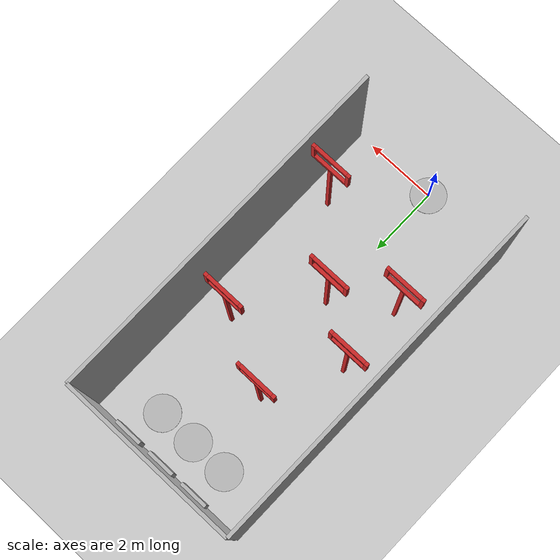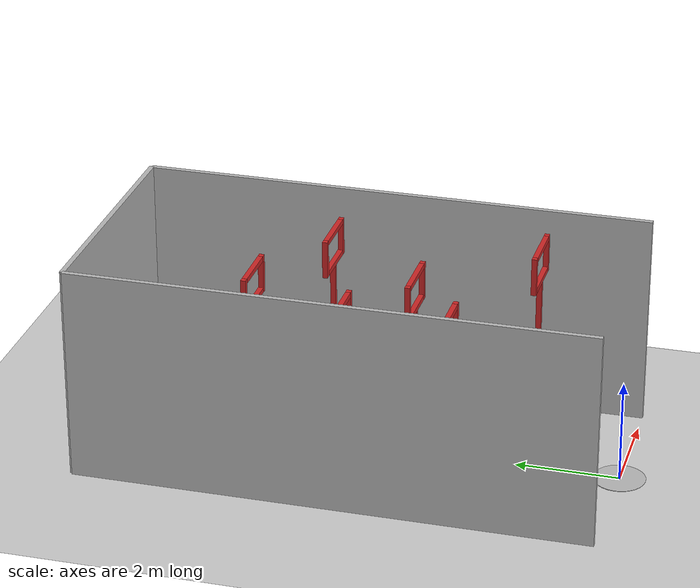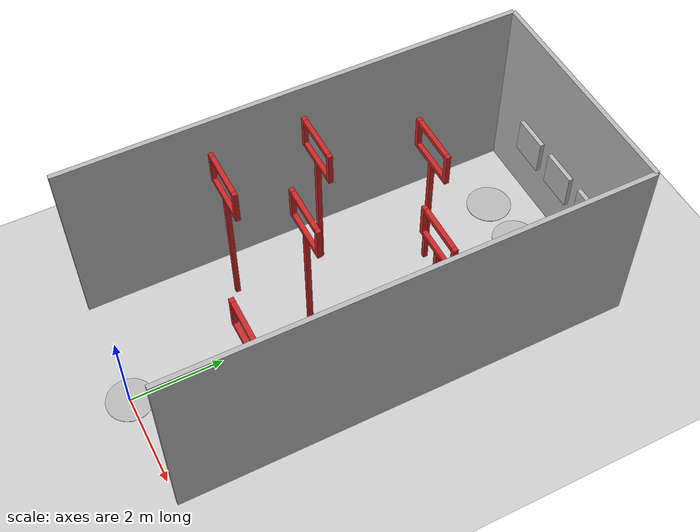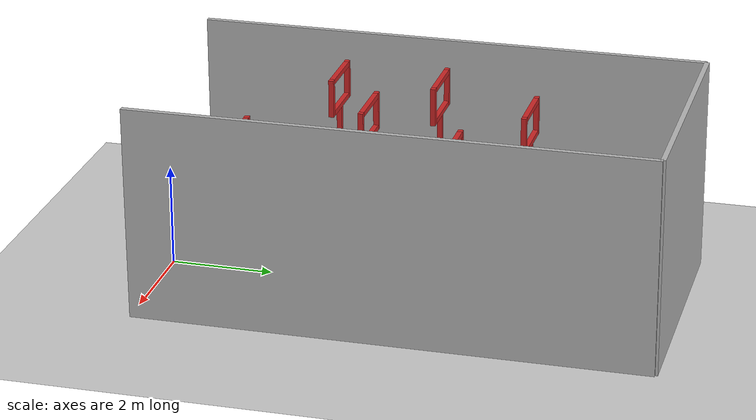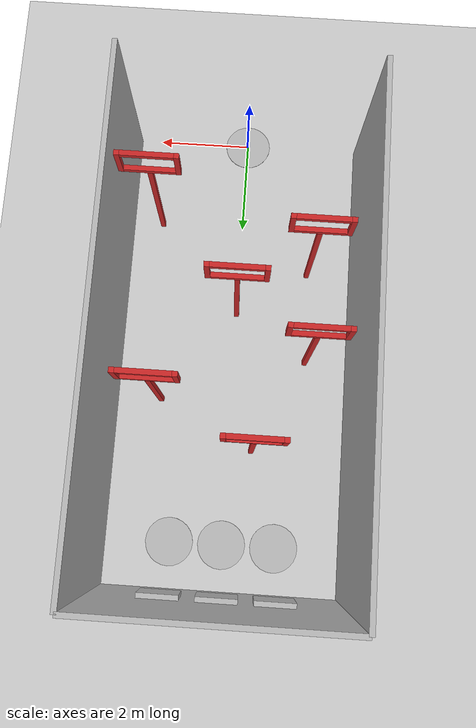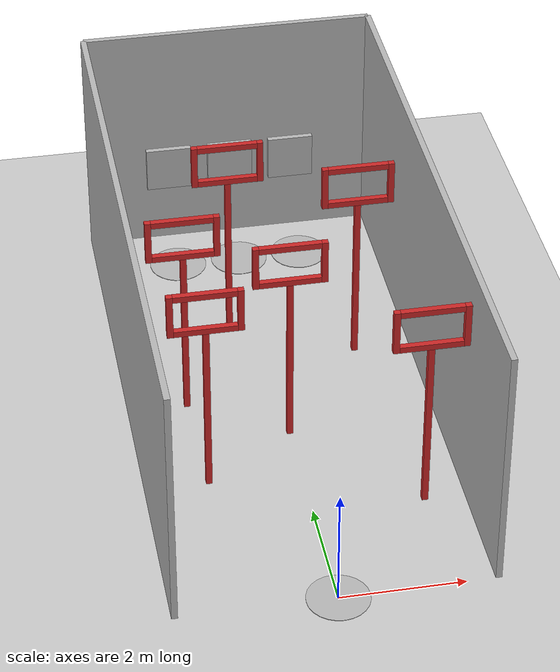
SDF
<sdf version="1.6">
 <world name="default">
  <light name="sun" type="directional">
   <pose>0 0 10 0 -0 0</pose>
   <diffuse>0.8 0.8 0.8 1</diffuse>
   <specular>0.2 0.2 0.2 1</specular>
   <attenuation>
    <range>1000</range>
    <constant>0.9</constant>
    <linear>0.01</linear>
    <quadratic>0.001</quadratic>
   </attenuation>
   <direction>-0.5 0.1 -0.9</direction>
  </light>
  <model name="ground_plane">
   <static>1</static>
   <link name="link">
    <collision name="collision">
     <geometry><plane><normal>0 0 1</normal><size>100 100</size></plane></geometry>
     <surface>
      <contact><collide_bitmask>65535</collide_bitmask></contact>
      <friction><ode><mu>100</mu><mu2>50</mu2></ode></friction>
     </surface>
    </collision>
    <visual name="visual">
     <cast_shadows>0</cast_shadows>
     <geometry><plane><normal>0 0 1</normal><size>100 100</size></plane></geometry>
     <material>
      <script><uri>file://media/materials/scripts/gazebo.material</uri><name>Gazebo/Grey</name></script>
     </material>
    </visual>
   </link>
  </model>
  <gravity>0 0 -9.8</gravity>
  <magnetic_field>6e-06 2.3e-05 -4.2e-05</magnetic_field>
  <atmosphere type="adiabatic"/>
  <physics name="default_physics" default="0" type="ode">
   <max_step_size>0.001</max_step_size>
   <real_time_factor>1</real_time_factor>
   <real_time_update_rate>1000</real_time_update_rate>
  </physics>
  <scene><ambient>0.4 0.4 0.4 1</ambient><background>0.7 0.7 0.7 1</background><shadows>1</shadows></scene>
  <audio><device>default</device></audio>
  <spherical_coordinates>
   <surface_model>EARTH_WGS84</surface_model>
   <latitude_deg>0</latitude_deg>
   <longitude_deg>0</longitude_deg>
   <elevation>0</elevation>
   <heading_deg>0</heading_deg>
  </spherical_coordinates>
  <model name="frame4">
   <link name="base_link">
    <inertial>
     <mass>50</mass>
     <inertia><ixx>2.5</ixx><ixy>0</ixy><ixz>0</ixz><iyy>2.5</iyy><iyz>0</iyz><izz>2.5</izz></inertia>
    </inertial>
    <collision name="base_link_collision">
     <pose>0 0 0.05 0 -0 0</pose>
     <geometry><box><size>0.1 0.1 2.9</size></box></geometry>
    </collision>
    <collision name="base_link_fixed_joint_lump__horizontal_down_collision_1">
     <geometry><box><size>1 0.1 0.1</size></box></geometry>
    </collision>
    <collision name="base_link_fixed_joint_lump__horizontal_up_collision_2">
     <geometry><box><size>1 0.1 0.1</size></box></geometry>
    </collision>
    <collision name="base_link_fixed_joint_lump__vertical_left_collision_3">
     <geometry><box><size>0.1 0.1 0.75</size></box></geometry>
    </collision>
    <collision name="base_link_fixed_joint_lump__vertical_right_collision_4">
     <geometry><box><size>0.1 0.1 0.75</size></box></geometry>
    </collision>
    <visual name="base_link_visual">
     <geometry><box><size>0.1 0.1 3</size></box></geometry>
     <material>
      <script><name>Gazebo/Red</name><uri>file://media/materials/scripts/gazebo.material</uri></script>
     </material>
    </visual>
    <visual name="base_link_fixed_joint_lump__horizontal_down_visual_1">
     <pose>0 0 1.55 0 -0 0</pose>
     <geometry><box><size>1 0.1 0.1</size></box></geometry>
     <material>
      <script><name>Gazebo/Red</name><uri>file://media/materials/scripts/gazebo.material</uri></script>
     </material>
    </visual>
    <visual name="base_link_fixed_joint_lump__horizontal_up_visual_2">
     <pose>0 0 2.2 0 -0 0</pose>
     <geometry><box><size>1 0.1 0.1</size></box></geometry>
     <material>
      <script><name>Gazebo/Red</name><uri>file://media/materials/scripts/gazebo.material</uri></script>
     </material>
    </visual>
    <visual name="base_link_fixed_joint_lump__vertical_left_visual_3">
     <pose>-0.55 0 1.875 0 -0 0</pose>
     <geometry><box><size>0.1 0.1 0.75</size></box></geometry>
     <material>
      <script><name>Gazebo/Red</name><uri>file://media/materials/scripts/gazebo.material</uri></script>
     </material>
    </visual>
    <visual name="base_link_fixed_joint_lump__vertical_right_visual_4">
     <pose>0.55 0 1.875 0 -0 0</pose>
     <geometry><box><size>0.1 0.1 0.75</size></box></geometry>
     <material>
      <script><name>Gazebo/Red</name><uri>file://media/materials/scripts/gazebo.material</uri></script>
     </material>
    </visual>
   </link>
   <joint name="world_joint" type="fixed"><child>base_link</child><parent>world</parent></joint>
   <pose>-1.55 5 1.5 0 -0 0</pose>
  </model>
  <model name="sidewall2">
   <link name="base_link">
    <inertial>
     <mass>10</mass>
     <inertia><ixx>0.5</ixx><ixy>0</ixy><ixz>0</ixz><iyy>0.5</iyy><iyz>0</iyz><izz>0.5</izz></inertia>
    </inertial>
    <collision name="base_link_collision">
     <pose>0 0 0.05 0 -0 0</pose>
     <geometry><box><size>0.1 10 4.1</size></box></geometry>
    </collision>
    <visual name="base_link_visual"><geometry><box><size>0.1 10 4.2</size></box></geometry></visual>
   </link>
   <joint name="world_joint" type="fixed"><child>base_link</child><parent>world</parent></joint>
   <pose>2.5 5 2.1 0 -0 0</pose>
  </model>
  <model name="platform1">
   <link name="base_link">
    <inertial>
     <mass>10</mass>
     <inertia><ixx>0.5</ixx><ixy>0</ixy><ixz>0</ixz><iyy>0.5</iyy><iyz>0</iyz><izz>0.5</izz></inertia>
    </inertial>
    <collision name="base_link_collision">
     <geometry><cylinder><length>0.01</length><radius>0.5</radius></cylinder></geometry>
    </collision>
    <visual name="base_link_visual">
     <geometry><cylinder><length>0.01</length><radius>0.5</radius></cylinder></geometry>
    </visual>
   </link>
   <joint name="world_joint" type="fixed"><child>base_link</child><parent>world</parent></joint>
   <pose>0 0 0.005 0 -0 0</pose>
  </model>
  <model name="frame1">
   <link name="base_link">
    <inertial>
     <mass>50</mass>
     <inertia><ixx>2.5</ixx><ixy>0</ixy><ixz>0</ixz><iyy>2.5</iyy><iyz>0</iyz><izz>2.5</izz></inertia>
    </inertial>
    <collision name="base_link_collision">
     <pose>0 0 0.05 0 -0 0</pose>
     <geometry><box><size>0.1 0.1 2.9</size></box></geometry>
    </collision>
    <collision name="base_link_fixed_joint_lump__horizontal_down_collision_1">
     <geometry><box><size>1 0.1 0.1</size></box></geometry>
    </collision>
    <collision name="base_link_fixed_joint_lump__horizontal_up_collision_2">
     <geometry><box><size>1 0.1 0.1</size></box></geometry>
    </collision>
    <collision name="base_link_fixed_joint_lump__vertical_left_collision_3">
     <geometry><box><size>0.1 0.1 0.75</size></box></geometry>
    </collision>
    <collision name="base_link_fixed_joint_lump__vertical_right_collision_4">
     <geometry><box><size>0.1 0.1 0.75</size></box></geometry>
    </collision>
    <visual name="base_link_visual">
     <geometry><box><size>0.1 0.1 3</size></box></geometry>
     <material>
      <script><name>Gazebo/Red</name><uri>file://media/materials/scripts/gazebo.material</uri></script>
     </material>
    </visual>
    <visual name="base_link_fixed_joint_lump__horizontal_down_visual_1">
     <pose>0 0 1.55 0 -0 0</pose>
     <geometry><box><size>1 0.1 0.1</size></box></geometry>
     <material>
      <script><name>Gazebo/Red</name><uri>file://media/materials/scripts/gazebo.material</uri></script>
     </material>
    </visual>
    <visual name="base_link_fixed_joint_lump__horizontal_up_visual_2">
     <pose>0 0 2.2 0 -0 0</pose>
     <geometry><box><size>1 0.1 0.1</size></box></geometry>
     <material>
      <script><name>Gazebo/Red</name><uri>file://media/materials/scripts/gazebo.material</uri></script>
     </material>
    </visual>
    <visual name="base_link_fixed_joint_lump__vertical_left_visual_3">
     <pose>-0.55 0 1.875 0 -0 0</pose>
     <geometry><box><size>0.1 0.1 0.75</size></box></geometry>
     <material>
      <script><name>Gazebo/Red</name><uri>file://media/materials/scripts/gazebo.material</uri></script>
     </material>
    </visual>
    <visual name="base_link_fixed_joint_lump__vertical_right_visual_4">
     <pose>0.55 0 1.875 0 -0 0</pose>
     <geometry><box><size>0.1 0.1 0.75</size></box></geometry>
     <material>
      <script><name>Gazebo/Red</name><uri>file://media/materials/scripts/gazebo.material</uri></script>
     </material>
    </visual>
   </link>
   <joint name="world_joint" type="fixed"><child>base_link</child><parent>world</parent></joint>
   <pose>1.8 2 1.5 0 -0 0</pose>
  </model>
  <model name="platform_one">
   <link name="base_link">
    <inertial>
     <mass>10</mass>
     <inertia><ixx>0.5</ixx><ixy>0</ixy><ixz>0</ixz><iyy>0.5</iyy><iyz>0</iyz><izz>0.5</izz></inertia>
    </inertial>
    <collision name="base_link_collision">
     <geometry><cylinder><length>0.01</length><radius>0.5</radius></cylinder></geometry>
    </collision>
    <visual name="base_link_visual">
     <geometry><cylinder><length>0.01</length><radius>0.5</radius></cylinder></geometry>
    </visual>
   </link>
   <joint name="world_joint" type="fixed"><child>base_link</child><parent>world</parent></joint>
   <pose>-1.1 9 0.005 0 -0 0</pose>
  </model>
  <model name="platform_two">
   <link name="base_link">
    <inertial>
     <mass>10</mass>
     <inertia><ixx>0.5</ixx><ixy>0</ixy><ixz>0</ixz><iyy>0.5</iyy><iyz>0</iyz><izz>0.5</izz></inertia>
    </inertial>
    <collision name="base_link_collision">
     <geometry><cylinder><length>0.01</length><radius>0.5</radius></cylinder></geometry>
    </collision>
    <visual name="base_link_visual">
     <geometry><cylinder><length>0.01</length><radius>0.5</radius></cylinder></geometry>
    </visual>
   </link>
   <joint name="world_joint" type="fixed"><child>base_link</child><parent>world</parent></joint>
   <pose>0 9 0.005 0 -0 0</pose>
  </model>
  <model name="sidewall1">
   <link name="base_link">
    <inertial>
     <mass>10</mass>
     <inertia><ixx>0.5</ixx><ixy>0</ixy><ixz>0</ixz><iyy>0.5</iyy><iyz>0</iyz><izz>0.5</izz></inertia>
    </inertial>
    <collision name="base_link_collision">
     <pose>0 0 0.05 0 -0 0</pose>
     <geometry><box><size>0.1 10 4.1</size></box></geometry>
    </collision>
    <visual name="base_link_visual"><geometry><box><size>0.1 10 4.2</size></box></geometry></visual>
   </link>
   <joint name="world_joint" type="fixed"><child>base_link</child><parent>world</parent></joint>
   <pose>-2.5 5 2.1 0 -0 0</pose>
  </model>
  <model name="wall1">
   <link name="base_link">
    <inertial>
     <mass>10</mass>
     <inertia><ixx>0.5</ixx><ixy>0</ixy><ixz>0</ixz><iyy>0.5</iyy><iyz>0</iyz><izz>0.5</izz></inertia>
    </inertial>
    <collision name="base_link_collision">
     <pose>0 0 0.05 0 -0 0</pose>
     <geometry><box><size>4.8 0.1 4.1</size></box></geometry>
    </collision>
    <visual name="base_link_visual"><geometry><box><size>5 0.1 4.2</size></box></geometry></visual>
   </link>
   <joint name="world_joint" type="fixed"><child>base_link</child><parent>world</parent></joint>
   <pose>0 10 2.1 0 -0 0</pose>
  </model>
  <model name="frame5">
   <link name="base_link">
    <inertial>
     <mass>50</mass>
     <inertia><ixx>2.5</ixx><ixy>0</ixy><ixz>0</ixz><iyy>2.5</iyy><iyz>0</iyz><izz>2.5</izz></inertia>
    </inertial>
    <collision name="base_link_collision">
     <pose>0 0 0.05 0 -0 0</pose>
     <geometry><box><size>0.1 0.1 2.9</size></box></geometry>
    </collision>
    <collision name="base_link_fixed_joint_lump__horizontal_down_collision_1">
     <geometry><box><size>1 0.1 0.1</size></box></geometry>
    </collision>
    <collision name="base_link_fixed_joint_lump__horizontal_up_collision_2">
     <geometry><box><size>1 0.1 0.1</size></box></geometry>
    </collision>
    <collision name="base_link_fixed_joint_lump__vertical_left_collision_3">
     <geometry><box><size>0.1 0.1 0.75</size></box></geometry>
    </collision>
    <collision name="base_link_fixed_joint_lump__vertical_right_collision_4">
     <geometry><box><size>0.1 0.1 0.75</size></box></geometry>
    </collision>
    <visual name="base_link_visual">
     <geometry><box><size>0.1 0.1 3</size></box></geometry>
     <material>
      <script><name>Gazebo/Red</name><uri>file://media/materials/scripts/gazebo.material</uri></script>
     </material>
    </visual>
    <visual name="base_link_fixed_joint_lump__horizontal_down_visual_1">
     <pose>0 0 1.55 0 -0 0</pose>
     <geometry><box><size>1 0.1 0.1</size></box></geometry>
     <material>
      <script><name>Gazebo/Red</name><uri>file://media/materials/scripts/gazebo.material</uri></script>
     </material>
    </visual>
    <visual name="base_link_fixed_joint_lump__horizontal_up_visual_2">
     <pose>0 0 2.2 0 -0 0</pose>
     <geometry><box><size>1 0.1 0.1</size></box></geometry>
     <material>
      <script><name>Gazebo/Red</name><uri>file://media/materials/scripts/gazebo.material</uri></script>
     </material>
    </visual>
    <visual name="base_link_fixed_joint_lump__vertical_left_visual_3">
     <pose>-0.55 0 1.875 0 -0 0</pose>
     <geometry><box><size>0.1 0.1 0.75</size></box></geometry>
     <material>
      <script><name>Gazebo/Red</name><uri>file://media/materials/scripts/gazebo.material</uri></script>
     </material>
    </visual>
    <visual name="base_link_fixed_joint_lump__vertical_right_visual_4">
     <pose>0.55 0 1.875 0 -0 0</pose>
     <geometry><box><size>0.1 0.1 0.75</size></box></geometry>
     <material>
      <script><name>Gazebo/Red</name><uri>file://media/materials/scripts/gazebo.material</uri></script>
     </material>
    </visual>
   </link>
   <joint name="world_joint" type="fixed"><child>base_link</child><parent>world</parent></joint>
   <pose>1.5 6 1.5 0 -0 0</pose>
  </model>
  <model name="platform_three">
   <link name="base_link">
    <inertial>
     <mass>10</mass>
     <inertia><ixx>0.5</ixx><ixy>0</ixy><ixz>0</ixz><iyy>0.5</iyy><iyz>0</iyz><izz>0.5</izz></inertia>
    </inertial>
    <collision name="base_link_collision">
     <geometry><cylinder><length>0.01</length><radius>0.5</radius></cylinder></geometry>
    </collision>
    <visual name="base_link_visual">
     <geometry><cylinder><length>0.01</length><radius>0.5</radius></cylinder></geometry>
    </visual>
   </link>
   <joint name="world_joint" type="fixed"><child>base_link</child><parent>world</parent></joint>
   <pose>1.1 9 0.005 0 -0 0</pose>
  </model>
  <model name="frame2">
   <link name="base_link">
    <inertial>
     <mass>50</mass>
     <inertia><ixx>2.5</ixx><ixy>0</ixy><ixz>0</ixz><iyy>2.5</iyy><iyz>0</iyz><izz>2.5</izz></inertia>
    </inertial>
    <collision name="base_link_collision">
     <pose>0 0 0.05 0 -0 0</pose>
     <geometry><box><size>0.1 0.1 2.9</size></box></geometry>
    </collision>
    <collision name="base_link_fixed_joint_lump__horizontal_down_collision_1">
     <geometry><box><size>1 0.1 0.1</size></box></geometry>
    </collision>
    <collision name="base_link_fixed_joint_lump__horizontal_up_collision_2">
     <geometry><box><size>1 0.1 0.1</size></box></geometry>
    </collision>
    <collision name="base_link_fixed_joint_lump__vertical_left_collision_3">
     <geometry><box><size>0.1 0.1 0.75</size></box></geometry>
    </collision>
    <collision name="base_link_fixed_joint_lump__vertical_right_collision_4">
     <geometry><box><size>0.1 0.1 0.75</size></box></geometry>
    </collision>
    <visual name="base_link_visual">
     <geometry><box><size>0.1 0.1 3</size></box></geometry>
     <material>
      <script><name>Gazebo/Red</name><uri>file://media/materials/scripts/gazebo.material</uri></script>
     </material>
    </visual>
    <visual name="base_link_fixed_joint_lump__horizontal_down_visual_1">
     <pose>0 0 1.55 0 -0 0</pose>
     <geometry><box><size>1 0.1 0.1</size></box></geometry>
     <material>
      <script><name>Gazebo/Red</name><uri>file://media/materials/scripts/gazebo.material</uri></script>
     </material>
    </visual>
    <visual name="base_link_fixed_joint_lump__horizontal_up_visual_2">
     <pose>0 0 2.2 0 -0 0</pose>
     <geometry><box><size>1 0.1 0.1</size></box></geometry>
     <material>
      <script><name>Gazebo/Red</name><uri>file://media/materials/scripts/gazebo.material</uri></script>
     </material>
    </visual>
    <visual name="base_link_fixed_joint_lump__vertical_left_visual_3">
     <pose>-0.55 0 1.875 0 -0 0</pose>
     <geometry><box><size>0.1 0.1 0.75</size></box></geometry>
     <material>
      <script><name>Gazebo/Red</name><uri>file://media/materials/scripts/gazebo.material</uri></script>
     </material>
    </visual>
    <visual name="base_link_fixed_joint_lump__vertical_right_visual_4">
     <pose>0.55 0 1.875 0 -0 0</pose>
     <geometry><box><size>0.1 0.1 0.75</size></box></geometry>
     <material>
      <script><name>Gazebo/Red</name><uri>file://media/materials/scripts/gazebo.material</uri></script>
     </material>
    </visual>
   </link>
   <joint name="world_joint" type="fixed"><child>base_link</child><parent>world</parent></joint>
   <pose>-1.5 3 1.5 0 -0 0</pose>
  </model>
  <model name="frame3">
   <link name="base_link">
    <inertial>
     <mass>50</mass>
     <inertia><ixx>2.5</ixx><ixy>0</ixy><ixz>0</ixz><iyy>2.5</iyy><iyz>0</iyz><izz>2.5</izz></inertia>
    </inertial>
    <collision name="base_link_collision">
     <pose>0 0 0.05 0 -0 0</pose>
     <geometry><box><size>0.1 0.1 2.9</size></box></geometry>
    </collision>
    <collision name="base_link_fixed_joint_lump__horizontal_down_collision_1">
     <geometry><box><size>1 0.1 0.1</size></box></geometry>
    </collision>
    <collision name="base_link_fixed_joint_lump__horizontal_up_collision_2">
     <geometry><box><size>1 0.1 0.1</size></box></geometry>
    </collision>
    <collision name="base_link_fixed_joint_lump__vertical_left_collision_3">
     <geometry><box><size>0.1 0.1 0.75</size></box></geometry>
    </collision>
    <collision name="base_link_fixed_joint_lump__vertical_right_collision_4">
     <geometry><box><size>0.1 0.1 0.75</size></box></geometry>
    </collision>
    <visual name="base_link_visual">
     <geometry><box><size>0.1 0.1 3</size></box></geometry>
     <material>
      <script><name>Gazebo/Red</name><uri>file://media/materials/scripts/gazebo.material</uri></script>
     </material>
    </visual>
    <visual name="base_link_fixed_joint_lump__horizontal_down_visual_1">
     <pose>0 0 1.55 0 -0 0</pose>
     <geometry><box><size>1 0.1 0.1</size></box></geometry>
     <material>
      <script><name>Gazebo/Red</name><uri>file://media/materials/scripts/gazebo.material</uri></script>
     </material>
    </visual>
    <visual name="base_link_fixed_joint_lump__horizontal_up_visual_2">
     <pose>0 0 2.2 0 -0 0</pose>
     <geometry><box><size>1 0.1 0.1</size></box></geometry>
     <material>
      <script><name>Gazebo/Red</name><uri>file://media/materials/scripts/gazebo.material</uri></script>
     </material>
    </visual>
    <visual name="base_link_fixed_joint_lump__vertical_left_visual_3">
     <pose>-0.55 0 1.875 0 -0 0</pose>
     <geometry><box><size>0.1 0.1 0.75</size></box></geometry>
     <material>
      <script><name>Gazebo/Red</name><uri>file://media/materials/scripts/gazebo.material</uri></script>
     </material>
    </visual>
    <visual name="base_link_fixed_joint_lump__vertical_right_visual_4">
     <pose>0.55 0 1.875 0 -0 0</pose>
     <geometry><box><size>0.1 0.1 0.75</size></box></geometry>
     <material>
      <script><name>Gazebo/Red</name><uri>file://media/materials/scripts/gazebo.material</uri></script>
     </material>
    </visual>
   </link>
   <joint name="world_joint" type="fixed"><child>base_link</child><parent>world</parent></joint>
   <pose>0 4 1.5 0 -0 0</pose>
  </model>
  <model name="frame6">
   <link name="base_link">
    <inertial>
     <mass>50</mass>
     <inertia><ixx>2.5</ixx><ixy>0</ixy><ixz>0</ixz><iyy>2.5</iyy><iyz>0</iyz><izz>2.5</izz></inertia>
    </inertial>
    <collision name="base_link_collision">
     <pose>0 0 0.05 0 -0 0</pose>
     <geometry><box><size>0.1 0.1 2.9</size></box></geometry>
    </collision>
    <collision name="base_link_fixed_joint_lump__horizontal_down_collision_1">
     <geometry><box><size>1 0.1 0.1</size></box></geometry>
    </collision>
    <collision name="base_link_fixed_joint_lump__horizontal_up_collision_2">
     <geometry><box><size>1 0.1 0.1</size></box></geometry>
    </collision>
    <collision name="base_link_fixed_joint_lump__vertical_left_collision_3">
     <geometry><box><size>0.1 0.1 0.75</size></box></geometry>
    </collision>
    <collision name="base_link_fixed_joint_lump__vertical_right_collision_4">
     <geometry><box><size>0.1 0.1 0.75</size></box></geometry>
    </collision>
    <visual name="base_link_visual">
     <geometry><box><size>0.1 0.1 3</size></box></geometry>
     <material>
      <script><name>Gazebo/Red</name><uri>file://media/materials/scripts/gazebo.material</uri></script>
     </material>
    </visual>
    <visual name="base_link_fixed_joint_lump__horizontal_down_visual_1">
     <pose>0 0 1.55 0 -0 0</pose>
     <geometry><box><size>1 0.1 0.1</size></box></geometry>
     <material>
      <script><name>Gazebo/Red</name><uri>file://media/materials/scripts/gazebo.material</uri></script>
     </material>
    </visual>
    <visual name="base_link_fixed_joint_lump__horizontal_up_visual_2">
     <pose>0 0 2.2 0 -0 0</pose>
     <geometry><box><size>1 0.1 0.1</size></box></geometry>
     <material>
      <script><name>Gazebo/Red</name><uri>file://media/materials/scripts/gazebo.material</uri></script>
     </material>
    </visual>
    <visual name="base_link_fixed_joint_lump__vertical_left_visual_3">
     <pose>-0.55 0 1.875 0 -0 0</pose>
     <geometry><box><size>0.1 0.1 0.75</size></box></geometry>
     <material>
      <script><name>Gazebo/Red</name><uri>file://media/materials/scripts/gazebo.material</uri></script>
     </material>
    </visual>
    <visual name="base_link_fixed_joint_lump__vertical_right_visual_4">
     <pose>0.55 0 1.875 0 -0 0</pose>
     <geometry><box><size>0.1 0.1 0.75</size></box></geometry>
     <material>
      <script><name>Gazebo/Red</name><uri>file://media/materials/scripts/gazebo.material</uri></script>
     </material>
    </visual>
   </link>
   <joint name="world_joint" type="fixed"><child>base_link</child><parent>world</parent></joint>
   <pose>-0.5 7 1.5 0 -0 0</pose>
  </model>
  <model name="plane_1">
   <static>1</static>
   <link name="link">
    <collision name="collision"><geometry><box><size>0.8 0.01 0.8</size></box></geometry></collision>
    <visual name="visual">
     <cast_shadows>0</cast_shadows>
     <geometry><box><size>0.8 0.1 0.8</size></box></geometry>
     <material>
      <script>
       <uri>model://plane_1/materials/scripts</uri>
       <uri>model://plane_1/materials/textures</uri>
       <name>vrc/plane1</name>
      </script>
     </material>
    </visual>
   </link>
   <pose>-1.1 9.9 1.5 0 -0 0</pose>
  </model>
  <model name="plane_2">
   <static>1</static>
   <link name="link">
    <collision name="collision"><geometry><box><size>0.8 0.01 0.8</size></box></geometry></collision>
    <visual name="visual">
     <cast_shadows>0</cast_shadows>
     <geometry><box><size>0.8 0.1 0.8</size></box></geometry>
     <material>
      <script>
       <uri>model://plane_2/materials/scripts</uri>
       <uri>model://plane_2/materials/textures</uri>
       <name>vrc/plane2</name>
      </script>
     </material>
    </visual>
   </link>
   <pose>0 9.9 1.5 0 -0 0</pose>
  </model>
  <model name="plane_3">
   <static>1</static>
   <link name="link">
    <collision name="collision"><geometry><box><size>0.8 0.01 0.8</size></box></geometry></collision>
    <visual name="visual">
     <cast_shadows>0</cast_shadows>
     <geometry><box><size>0.8 0.1 0.8</size></box></geometry>
     <material>
      <script>
       <uri>model://plane_3/materials/scripts</uri>
       <uri>model://plane_3/materials/textures</uri>
       <name>vrc/plane3</name>
      </script>
     </material>
    </visual>
   </link>
   <pose>1.1 9.9 1.5 0 -0 0</pose>
  </model>
 </world>
</sdf>
